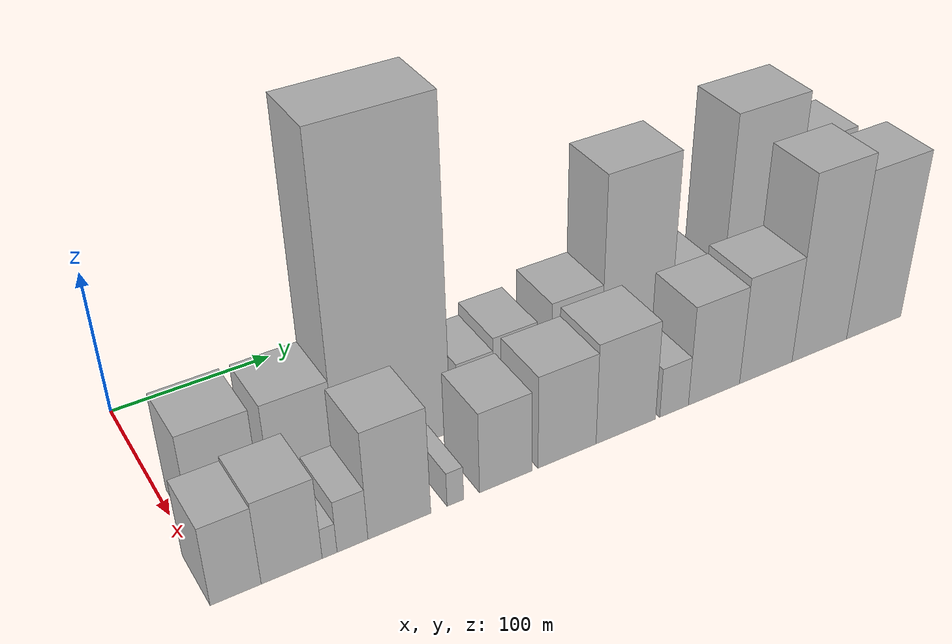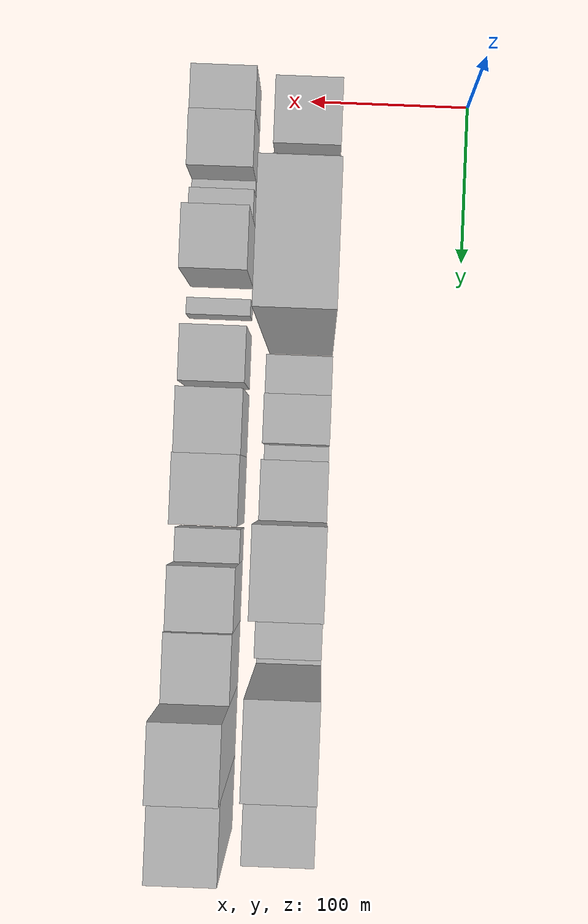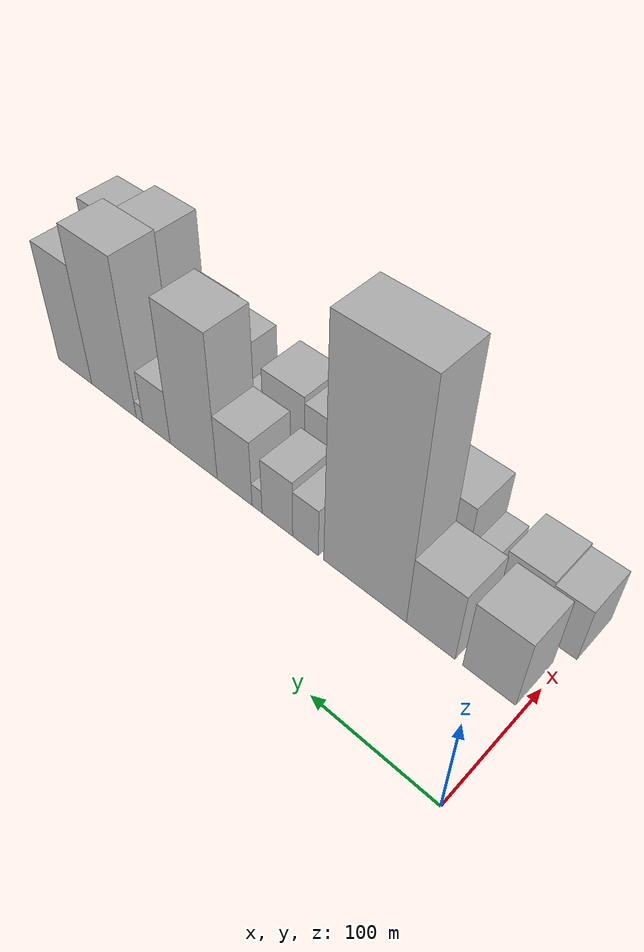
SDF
<sdf version="1.6">
 <world name="default">
  <model name="building_11">
   <static>1</static>
   <pose>100.0000 25.2043 0 0.000000 0.000000 0.000000</pose>
   <link name="link">
    <pose>0 0 34.50 0 0 0</pose>
    <collision name="collision"><geometry><box><size>40.0000 40.0555 69.0000</size></box></geometry></collision>
    <visual name="visual">
     <cast_shadows>0</cast_shadows>
     <geometry><box><size>40.0000 40.0555 69.0000</size></box></geometry>
     <material>
      <script>
       <uri>model://HANNAS_wall/materials/scripts</uri>
       <uri>model://HANNAS_wall/materials/textures</uri>
       <name>vrc/HANNAS_wall</name>
      </script>
     </material>
    </visual>
   </link>
  </model>
  <model name="building_12">
   <static>1</static>
   <pose>100.0000 70.8422 0 0.000000 0.000000 0.000000</pose>
   <link name="link">
    <pose>0 0 34.50 0 0 0</pose>
    <collision name="collision"><geometry><box><size>40.0000 39.2203 69.0000</size></box></geometry></collision>
    <visual name="visual">
     <cast_shadows>0</cast_shadows>
     <geometry><box><size>40.0000 39.2203 69.0000</size></box></geometry>
     <material>
      <script>
       <uri>model://HANNAS_wall/materials/scripts</uri>
       <uri>model://HANNAS_wall/materials/textures</uri>
       <name>vrc/HANNAS_wall</name>
      </script>
     </material>
    </visual>
   </link>
  </model>
  <model name="building_13">
   <static>1</static>
   <pose>100.0000 126.4657 0 0.000000 0.000000 0.000000</pose>
   <link name="link">
    <pose>0 0 111.00 0 0 0</pose>
    <collision name="collision"><geometry><box><size>40.0000 72.0267 222.0000</size></box></geometry></collision>
    <visual name="visual">
     <cast_shadows>0</cast_shadows>
     <geometry><box><size>40.0000 72.0267 222.0000</size></box></geometry>
     <material>
      <script>
       <uri>model://HANNAS_wall/materials/scripts</uri>
       <uri>model://HANNAS_wall/materials/textures</uri>
       <name>vrc/HANNAS_wall</name>
      </script>
     </material>
    </visual>
   </link>
  </model>
  <model name="building_14">
   <static>1</static>
   <pose>100.0000 179.4821 0 0.000000 0.000000 0.000000</pose>
   <link name="link">
    <pose>0 0 24.00 0 0 0</pose>
    <collision name="collision"><geometry><box><size>40.0000 24.0061 48.0000</size></box></geometry></collision>
    <visual name="visual">
     <cast_shadows>0</cast_shadows>
     <geometry><box><size>40.0000 24.0061 48.0000</size></box></geometry>
     <material>
      <script>
       <uri>model://HANNAS_wall/materials/scripts</uri>
       <uri>model://HANNAS_wall/materials/textures</uri>
       <name>vrc/HANNAS_wall</name>
      </script>
     </material>
    </visual>
   </link>
  </model>
  <model name="building_15">
   <static>1</static>
   <pose>100.0000 206.3075 0 0.000000 0.000000 0.000000</pose>
   <link name="link">
    <pose>0 0 28.50 0 0 0</pose>
    <collision name="collision"><geometry><box><size>40.0000 29.6446 57.0000</size></box></geometry></collision>
    <visual name="visual">
     <cast_shadows>0</cast_shadows>
     <geometry><box><size>40.0000 29.6446 57.0000</size></box></geometry>
     <material>
      <script>
       <uri>model://HANNAS_wall/materials/scripts</uri>
       <uri>model://HANNAS_wall/materials/textures</uri>
       <name>vrc/HANNAS_wall</name>
      </script>
     </material>
    </visual>
   </link>
  </model>
  <model name="building_16">
   <static>1</static>
   <pose>100.0000 226.1018 0 0.000000 0.000000 0.000000</pose>
   <link name="link">
    <pose>0 0 12.00 0 0 0</pose>
    <collision name="collision"><geometry><box><size>40.0000 9.9441 24.0000</size></box></geometry></collision>
    <visual name="visual">
     <cast_shadows>0</cast_shadows>
     <geometry><box><size>40.0000 9.9441 24.0000</size></box></geometry>
     <material>
      <script>
       <uri>model://HANNAS_wall/materials/scripts</uri>
       <uri>model://HANNAS_wall/materials/textures</uri>
       <name>vrc/HANNAS_wall</name>
      </script>
     </material>
    </visual>
   </link>
  </model>
  <model name="building_17">
   <static>1</static>
   <pose>100.0000 248.8983 0 0.000000 0.000000 0.000000</pose>
   <link name="link">
    <pose>0 0 33.00 0 0 0</pose>
    <collision name="collision"><geometry><box><size>40.0000 35.6488 66.0000</size></box></geometry></collision>
    <visual name="visual">
     <cast_shadows>0</cast_shadows>
     <geometry><box><size>40.0000 35.6488 66.0000</size></box></geometry>
     <material>
      <script>
       <uri>model://HANNAS_wall/materials/scripts</uri>
       <uri>model://HANNAS_wall/materials/textures</uri>
       <name>vrc/HANNAS_wall</name>
      </script>
     </material>
    </visual>
   </link>
  </model>
  <model name="building_18">
   <static>1</static>
   <pose>100.0000 292.2754 0 0.000000 0.000000 0.000000</pose>
   <link name="link">
    <pose>0 0 70.50 0 0 0</pose>
    <collision name="collision"><geometry><box><size>40.0000 51.1055 141.0000</size></box></geometry></collision>
    <visual name="visual">
     <cast_shadows>0</cast_shadows>
     <geometry><box><size>40.0000 51.1055 141.0000</size></box></geometry>
     <material>
      <script>
       <uri>model://HANNAS_wall/materials/scripts</uri>
       <uri>model://HANNAS_wall/materials/textures</uri>
       <name>vrc/HANNAS_wall</name>
      </script>
     </material>
    </visual>
   </link>
  </model>
  <model name="building_19">
   <static>1</static>
   <pose>100.0000 333.3873 0 0.000000 0.000000 0.000000</pose>
   <link name="link">
    <pose>0 0 27.00 0 0 0</pose>
    <collision name="collision"><geometry><box><size>40.0000 31.1182 54.0000</size></box></geometry></collision>
    <visual name="visual">
     <cast_shadows>0</cast_shadows>
     <geometry><box><size>40.0000 31.1182 54.0000</size></box></geometry>
     <material>
      <script>
       <uri>model://HANNAS_wall/materials/scripts</uri>
       <uri>model://HANNAS_wall/materials/textures</uri>
       <name>vrc/HANNAS_wall</name>
      </script>
     </material>
    </visual>
   </link>
  </model>
  <model name="building_20">
   <static>1</static>
   <pose>100.0000 352.8147 0 0.000000 0.000000 0.000000</pose>
   <link name="link">
    <pose>0 0 9.00 0 0 0</pose>
    <collision name="collision"><geometry><box><size>40.0000 7.7366 18.0000</size></box></geometry></collision>
    <visual name="visual">
     <cast_shadows>0</cast_shadows>
     <geometry><box><size>40.0000 7.7366 18.0000</size></box></geometry>
     <material>
      <script>
       <uri>model://HANNAS_wall/materials/scripts</uri>
       <uri>model://HANNAS_wall/materials/textures</uri>
       <name>vrc/HANNAS_wall</name>
      </script>
     </material>
    </visual>
   </link>
  </model>
  <model name="building_21">
   <static>1</static>
   <pose>100.0000 383.6307 0 0.000000 0.000000 0.000000</pose>
   <link name="link">
    <pose>0 0 76.50 0 0 0</pose>
    <collision name="collision"><geometry><box><size>40.0000 53.8956 153.0000</size></box></geometry></collision>
    <visual name="visual">
     <cast_shadows>0</cast_shadows>
     <geometry><box><size>40.0000 53.8956 153.0000</size></box></geometry>
     <material>
      <script>
       <uri>model://HANNAS_wall/materials/scripts</uri>
       <uri>model://HANNAS_wall/materials/textures</uri>
       <name>vrc/HANNAS_wall</name>
      </script>
     </material>
    </visual>
   </link>
  </model>
  <model name="building_22">
   <static>1</static>
   <pose>100.0000 431.7783 0 0.000000 0.000000 0.000000</pose>
   <link name="link">
    <pose>0 0 58.50 0 0 0</pose>
    <collision name="collision"><geometry><box><size>40.0000 42.3995 117.0000</size></box></geometry></collision>
    <visual name="visual">
     <cast_shadows>0</cast_shadows>
     <geometry><box><size>40.0000 42.3995 117.0000</size></box></geometry>
     <material>
      <script>
       <uri>model://HANNAS_wall/materials/scripts</uri>
       <uri>model://HANNAS_wall/materials/textures</uri>
       <name>vrc/HANNAS_wall</name>
      </script>
     </material>
    </visual>
   </link>
  </model>
  <model name="building_37">
   <static>1</static>
   <pose>152.0000 9.2119 0 0.000000 0.000000 0.000000</pose>
   <link name="link">
    <pose>0 0 27.00 0 0 0</pose>
    <collision name="collision"><geometry><box><size>40.0000 27.6851 54.0000</size></box></geometry></collision>
    <visual name="visual">
     <cast_shadows>0</cast_shadows>
     <geometry><box><size>40.0000 27.6851 54.0000</size></box></geometry>
     <material>
      <script>
       <uri>model://HANNAS_wall/materials/scripts</uri>
       <uri>model://HANNAS_wall/materials/textures</uri>
       <name>vrc/HANNAS_wall</name>
      </script>
     </material>
    </visual>
   </link>
  </model>
  <model name="building_38">
   <static>1</static>
   <pose>152.0000 40.1477 0 0.000000 0.000000 0.000000</pose>
   <link name="link">
    <pose>0 0 28.50 0 0 0</pose>
    <collision name="collision"><geometry><box><size>40.0000 34.1865 57.0000</size></box></geometry></collision>
    <visual name="visual">
     <cast_shadows>0</cast_shadows>
     <geometry><box><size>40.0000 34.1865 57.0000</size></box></geometry>
     <material>
      <script>
       <uri>model://HANNAS_wall/materials/scripts</uri>
       <uri>model://HANNAS_wall/materials/textures</uri>
       <name>vrc/HANNAS_wall</name>
      </script>
     </material>
    </visual>
   </link>
  </model>
  <model name="building_39">
   <static>1</static>
   <pose>152.0000 61.5253 0 0.000000 0.000000 0.000000</pose>
   <link name="link">
    <pose>0 0 10.50 0 0 0</pose>
    <collision name="collision"><geometry><box><size>40.0000 8.5686 21.0000</size></box></geometry></collision>
    <visual name="visual">
     <cast_shadows>0</cast_shadows>
     <geometry><box><size>40.0000 8.5686 21.0000</size></box></geometry>
     <material>
      <script>
       <uri>model://HANNAS_wall/materials/scripts</uri>
       <uri>model://HANNAS_wall/materials/textures</uri>
       <name>vrc/HANNAS_wall</name>
      </script>
     </material>
    </visual>
   </link>
  </model>
  <model name="building_40">
   <static>1</static>
   <pose>152.0000 74.8175 0 0.000000 0.000000 0.000000</pose>
   <link name="link">
    <pose>0 0 18.00 0 0 0</pose>
    <collision name="collision"><geometry><box><size>40.0000 18.0157 36.0000</size></box></geometry></collision>
    <visual name="visual">
     <cast_shadows>0</cast_shadows>
     <geometry><box><size>40.0000 18.0157 36.0000</size></box></geometry>
     <material>
      <script>
       <uri>model://HANNAS_wall/materials/scripts</uri>
       <uri>model://HANNAS_wall/materials/textures</uri>
       <name>vrc/HANNAS_wall</name>
      </script>
     </material>
    </visual>
   </link>
  </model>
  <model name="building_41">
   <static>1</static>
   <pose>152.0000 102.7300 0 0.000000 0.000000 0.000000</pose>
   <link name="link">
    <pose>0 0 37.50 0 0 0</pose>
    <collision name="collision"><geometry><box><size>40.0000 37.8094 75.0000</size></box></geometry></collision>
    <visual name="visual">
     <cast_shadows>0</cast_shadows>
     <geometry><box><size>40.0000 37.8094 75.0000</size></box></geometry>
     <material>
      <script>
       <uri>model://HANNAS_wall/materials/scripts</uri>
       <uri>model://HANNAS_wall/materials/textures</uri>
       <name>vrc/HANNAS_wall</name>
      </script>
     </material>
    </visual>
   </link>
  </model>
  <model name="building_42">
   <static>1</static>
   <pose>152.0000 136.8288 0 0.000000 0.000000 0.000000</pose>
   <link name="link">
    <pose>0 0 12.00 0 0 0</pose>
    <collision name="collision"><geometry><box><size>40.0000 10.3882 24.0000</size></box></geometry></collision>
    <visual name="visual">
     <cast_shadows>0</cast_shadows>
     <geometry><box><size>40.0000 10.3882 24.0000</size></box></geometry>
     <material>
      <script>
       <uri>model://HANNAS_wall/materials/scripts</uri>
       <uri>model://HANNAS_wall/materials/textures</uri>
       <name>vrc/HANNAS_wall</name>
      </script>
     </material>
    </visual>
   </link>
  </model>
  <model name="building_43">
   <static>1</static>
   <pose>152.0000 168.9314 0 0.000000 0.000000 0.000000</pose>
   <link name="link">
    <pose>0 0 28.50 0 0 0</pose>
    <collision name="collision"><geometry><box><size>40.0000 33.8170 57.0000</size></box></geometry></collision>
    <visual name="visual">
     <cast_shadows>0</cast_shadows>
     <geometry><box><size>40.0000 33.8170 57.0000</size></box></geometry>
     <material>
      <script>
       <uri>model://HANNAS_wall/materials/scripts</uri>
       <uri>model://HANNAS_wall/materials/textures</uri>
       <name>vrc/HANNAS_wall</name>
      </script>
     </material>
    </visual>
   </link>
  </model>
  <model name="building_44">
   <static>1</static>
   <pose>152.0000 209.3915 0 0.000000 0.000000 0.000000</pose>
   <link name="link">
    <pose>0 0 33.00 0 0 0</pose>
    <collision name="collision"><geometry><box><size>40.0000 39.1034 66.0000</size></box></geometry></collision>
    <visual name="visual">
     <cast_shadows>0</cast_shadows>
     <geometry><box><size>40.0000 39.1034 66.0000</size></box></geometry>
     <material>
      <script>
       <uri>model://HANNAS_wall/materials/scripts</uri>
       <uri>model://HANNAS_wall/materials/textures</uri>
       <name>vrc/HANNAS_wall</name>
      </script>
     </material>
    </visual>
   </link>
  </model>
  <model name="building_45">
   <static>1</static>
   <pose>152.0000 249.8502 0 0.000000 0.000000 0.000000</pose>
   <link name="link">
    <pose>0 0 36.00 0 0 0</pose>
    <collision name="collision"><geometry><box><size>40.0000 41.8139 72.0000</size></box></geometry></collision>
    <visual name="visual">
     <cast_shadows>0</cast_shadows>
     <geometry><box><size>40.0000 41.8139 72.0000</size></box></geometry>
     <material>
      <script>
       <uri>model://HANNAS_wall/materials/scripts</uri>
       <uri>model://HANNAS_wall/materials/textures</uri>
       <name>vrc/HANNAS_wall</name>
      </script>
     </material>
    </visual>
   </link>
  </model>
  <model name="building_46">
   <static>1</static>
   <pose>152.0000 284.1817 0 0.000000 0.000000 0.000000</pose>
   <link name="link">
    <pose>0 0 18.00 0 0 0</pose>
    <collision name="collision"><geometry><box><size>40.0000 20.8492 36.0000</size></box></geometry></collision>
    <visual name="visual">
     <cast_shadows>0</cast_shadows>
     <geometry><box><size>40.0000 20.8492 36.0000</size></box></geometry>
     <material>
      <script>
       <uri>model://HANNAS_wall/materials/scripts</uri>
       <uri>model://HANNAS_wall/materials/textures</uri>
       <name>vrc/HANNAS_wall</name>
      </script>
     </material>
    </visual>
   </link>
  </model>
  <model name="building_47">
   <static>1</static>
   <pose>152.0000 313.7366 0 0.000000 0.000000 0.000000</pose>
   <link name="link">
    <pose>0 0 36.00 0 0 0</pose>
    <collision name="collision"><geometry><box><size>40.0000 38.2607 72.0000</size></box></geometry></collision>
    <visual name="visual">
     <cast_shadows>0</cast_shadows>
     <geometry><box><size>40.0000 38.2607 72.0000</size></box></geometry>
     <material>
      <script>
       <uri>model://HANNAS_wall/materials/scripts</uri>
       <uri>model://HANNAS_wall/materials/textures</uri>
       <name>vrc/HANNAS_wall</name>
      </script>
     </material>
    </visual>
   </link>
  </model>
  <model name="building_48">
   <static>1</static>
   <pose>152.0000 353.2855 0 0.000000 0.000000 0.000000</pose>
   <link name="link">
    <pose>0 0 39.00 0 0 0</pose>
    <collision name="collision"><geometry><box><size>40.0000 40.8370 78.0000</size></box></geometry></collision>
    <visual name="visual">
     <cast_shadows>0</cast_shadows>
     <geometry><box><size>40.0000 40.8370 78.0000</size></box></geometry>
     <material>
      <script>
       <uri>model://HANNAS_wall/materials/scripts</uri>
       <uri>model://HANNAS_wall/materials/textures</uri>
       <name>vrc/HANNAS_wall</name>
      </script>
     </material>
    </visual>
   </link>
  </model>
  <model name="building_49">
   <static>1</static>
   <pose>152.0000 395.8214 0 0.000000 0.000000 0.000000</pose>
   <link name="link">
    <pose>0 0 67.50 0 0 0</pose>
    <collision name="collision"><geometry><box><size>40.0000 44.2348 135.0000</size></box></geometry></collision>
    <visual name="visual">
     <cast_shadows>0</cast_shadows>
     <geometry><box><size>40.0000 44.2348 135.0000</size></box></geometry>
     <material>
      <script>
       <uri>model://HANNAS_wall/materials/scripts</uri>
       <uri>model://HANNAS_wall/materials/textures</uri>
       <name>vrc/HANNAS_wall</name>
      </script>
     </material>
    </visual>
   </link>
  </model>
  <model name="building_50">
   <static>1</static>
   <pose>152.0000 440.8345 0 0.000000 0.000000 0.000000</pose>
   <link name="link">
    <pose>0 0 61.50 0 0 0</pose>
    <collision name="collision"><geometry><box><size>40.0000 45.7916 123.0000</size></box></geometry></collision>
    <visual name="visual">
     <cast_shadows>0</cast_shadows>
     <geometry><box><size>40.0000 45.7916 123.0000</size></box></geometry>
     <material>
      <script>
       <uri>model://HANNAS_wall/materials/scripts</uri>
       <uri>model://HANNAS_wall/materials/textures</uri>
       <name>vrc/HANNAS_wall</name>
      </script>
     </material>
    </visual>
   </link>
  </model>
 </world>
</sdf>
